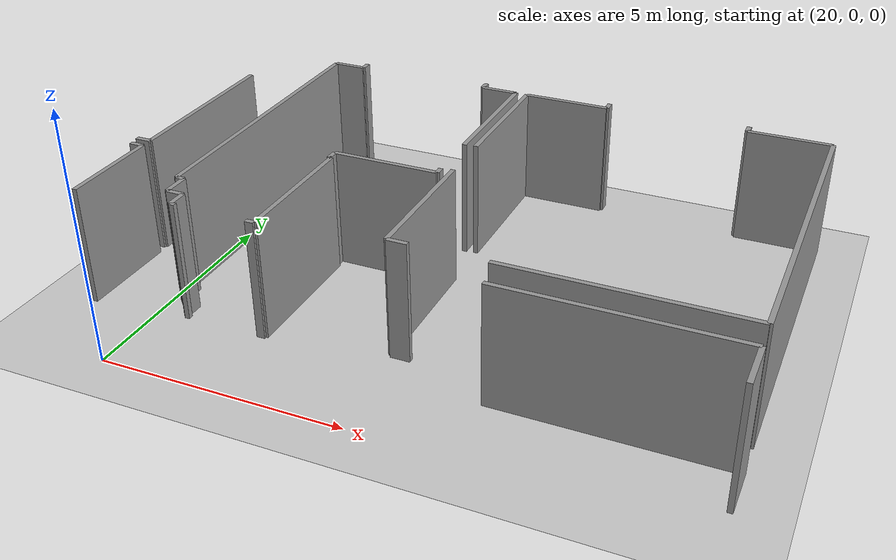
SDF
<sdf version="1.6">
 <world name="default">
  <model name="ground_plane">
   <static>1</static>
   <link name="link">
    <collision name="collision">
     <geometry><plane><normal>0 0 1</normal><size>100 100</size></plane></geometry>
     <surface><friction><ode><mu>100</mu><mu2>50</mu2></ode></friction></surface>
    </collision>
    <visual name="visual">
     <cast_shadows>0</cast_shadows>
     <geometry><plane><normal>0 0 1</normal><size>100 100</size></plane></geometry>
     <material>
      <script><uri>file://media/materials/scripts/gazebo.material</uri><name>Gazebo/Grey</name></script>
     </material>
    </visual>
   </link>
  </model>
  <model name="0510034841_A-40">
   <static>1</static>
   <link name="Wall_249">
    <collision name="Wall_249_Collision">
     <geometry><box><size>0.285493043567 0.1 2.5</size></box></geometry>
     <pose>0.142746521783 0 1.25 0 0 0</pose>
    </collision>
    <visual name="Wall_249_Visual">
     <pose>0.142746521783 0 1.25 0 0 0</pose>
     <geometry><box><size>0.285493043567 0.1 2.5</size></box></geometry>
     <material>
      <script><uri>file://media/materials/scripts/gazebo.material</uri><name>Gazebo/Grey</name></script>
      <ambient>1 1 1 1</ambient>
     </material>
    </visual>
    <pose>52.1133340104 -5.7047831827 0 0 0 0.0</pose>
   </link>
   <link name="Wall_250">
    <collision name="Wall_250_Collision">
     <geometry><box><size>2.08210622525 0.1 2.5</size></box></geometry>
     <pose>1.04105311262 0 1.25 0 0 0</pose>
    </collision>
    <visual name="Wall_250_Visual">
     <pose>1.04105311262 0 1.25 0 0 0</pose>
     <geometry><box><size>2.08210622525 0.1 2.5</size></box></geometry>
     <material>
      <script><uri>file://media/materials/scripts/gazebo.material</uri><name>Gazebo/Grey</name></script>
      <ambient>1 1 1 1</ambient>
     </material>
    </visual>
    <pose>52.3988270539 -5.7047831827 0 0 0 -1.57079632679</pose>
   </link>
   <link name="Wall_264">
    <collision name="Wall_264_Collision">
     <geometry><box><size>3.80687011272 0.1 2.5</size></box></geometry>
     <pose>1.90343505636 0 1.25 0 0 0</pose>
    </collision>
    <visual name="Wall_264_Visual">
     <pose>1.90343505636 0 1.25 0 0 0</pose>
     <geometry><box><size>3.80687011272 0.1 2.5</size></box></geometry>
     <material>
      <script><uri>file://media/materials/scripts/gazebo.material</uri><name>Gazebo/Grey</name></script>
      <ambient>1 1 1 1</ambient>
     </material>
    </visual>
    <pose>52.4046663959 -1.65659591754 0 0 0 -1.57079632679</pose>
   </link>
   <link name="Wall_265">
    <collision name="Wall_265_Collision">
     <geometry><box><size>0.318751904133 0.1 2.5</size></box></geometry>
     <pose>0.159375952067 0 1.25 0 0 0</pose>
    </collision>
    <visual name="Wall_265_Visual">
     <pose>0.159375952067 0 1.25 0 0 0</pose>
     <geometry><box><size>0.318751904133 0.1 2.5</size></box></geometry>
     <material>
      <script><uri>file://media/materials/scripts/gazebo.material</uri><name>Gazebo/Grey</name></script>
      <ambient>1 1 1 1</ambient>
     </material>
    </visual>
    <pose>52.4046663959 -5.46346603026 0 0 0 3.14159265359</pose>
   </link>
   <link name="Wall_267">
    <collision name="Wall_267_Collision">
     <geometry><box><size>6.36285162994 0.1 2.5</size></box></geometry>
     <pose>3.18142581497 0 1.25 0 0 0</pose>
    </collision>
    <visual name="Wall_267_Visual">
     <pose>3.18142581497 0 1.25 0 0 0</pose>
     <geometry><box><size>6.36285162994 0.1 2.5</size></box></geometry>
     <material>
      <script><uri>file://media/materials/scripts/gazebo.material</uri><name>Gazebo/Grey</name></script>
      <ambient>1 1 1 1</ambient>
     </material>
    </visual>
    <pose>53.8590433635 -6.6075962222 0 0 0 1.57079632679</pose>
   </link>
   <link name="Wall_268">
    <collision name="Wall_268_Collision">
     <geometry><box><size>0.70122880065 0.1 2.5</size></box></geometry>
     <pose>0.350614400325 0 1.25 0 0 0</pose>
    </collision>
    <visual name="Wall_268_Visual">
     <pose>0.350614400325 0 1.25 0 0 0</pose>
     <geometry><box><size>0.70122880065 0.1 2.5</size></box></geometry>
     <material>
      <script><uri>file://media/materials/scripts/gazebo.material</uri><name>Gazebo/Grey</name></script>
      <ambient>1 1 1 1</ambient>
     </material>
    </visual>
    <pose>53.8590433635 -0.244744592262 0 0 0 0.0</pose>
   </link>
   <link name="Wall_269">
    <collision name="Wall_269_Collision">
     <geometry><box><size>0.223799126638 0.1 2.5</size></box></geometry>
     <pose>0.111899563319 0 1.25 0 0 0</pose>
    </collision>
    <visual name="Wall_269_Visual">
     <pose>0.111899563319 0 1.25 0 0 0</pose>
     <geometry><box><size>0.223799126638 0.1 2.5</size></box></geometry>
     <material>
      <script><uri>file://media/materials/scripts/gazebo.material</uri><name>Gazebo/Grey</name></script>
      <ambient>1 1 1 1</ambient>
     </material>
    </visual>
    <pose>54.5602721641 -0.244744592262 0 0 0 1.57079632679</pose>
   </link>
   <link name="Wall_270">
    <collision name="Wall_270_Collision">
     <geometry><box><size>0.227734335331 0.1 2.5</size></box></geometry>
     <pose>0.113867167665 0 1.25 0 0 0</pose>
    </collision>
    <visual name="Wall_270_Visual">
     <pose>0.113867167665 0 1.25 0 0 0</pose>
     <geometry><box><size>0.227734335331 0.1 2.5</size></box></geometry>
     <material>
      <script><uri>file://media/materials/scripts/gazebo.material</uri><name>Gazebo/Grey</name></script>
      <ambient>1 1 1 1</ambient>
     </material>
    </visual>
    <pose>57.5729917741 -0.0209454656241 0 0 0 -1.57079632679</pose>
   </link>
   <link name="Wall_271">
    <collision name="Wall_271_Collision">
     <geometry><box><size>0.790850005078 0.1 2.5</size></box></geometry>
     <pose>0.395425002539 0 1.25 0 0 0</pose>
    </collision>
    <visual name="Wall_271_Visual">
     <pose>0.395425002539 0 1.25 0 0 0</pose>
     <geometry><box><size>0.790850005078 0.1 2.5</size></box></geometry>
     <material>
      <script><uri>file://media/materials/scripts/gazebo.material</uri><name>Gazebo/Grey</name></script>
      <ambient>1 1 1 1</ambient>
     </material>
    </visual>
    <pose>57.5729917741 -0.248679800955 0 0 0 0.0</pose>
   </link>
   <link name="Wall_272">
    <collision name="Wall_272_Collision">
     <geometry><box><size>2.89187062049 0.1 2.5</size></box></geometry>
     <pose>1.44593531025 0 1.25 0 0 0</pose>
    </collision>
    <visual name="Wall_272_Visual">
     <pose>1.44593531025 0 1.25 0 0 0</pose>
     <geometry><box><size>2.89187062049 0.1 2.5</size></box></geometry>
     <material>
      <script><uri>file://media/materials/scripts/gazebo.material</uri><name>Gazebo/Grey</name></script>
      <ambient>1 1 1 1</ambient>
     </material>
    </visual>
    <pose>58.3638417792 -0.248679800955 0 0 0 -1.57079632679</pose>
   </link>
   <link name="Wall_273">
    <collision name="Wall_273_Collision">
     <geometry><box><size>0.176576622322 0.1 2.5</size></box></geometry>
     <pose>0.0882883111608 0 1.25 0 0 0</pose>
    </collision>
    <visual name="Wall_273_Visual">
     <pose>0.0882883111608 0 1.25 0 0 0</pose>
     <geometry><box><size>0.176576622322 0.1 2.5</size></box></geometry>
     <material>
      <script><uri>file://media/materials/scripts/gazebo.material</uri><name>Gazebo/Grey</name></script>
      <ambient>1 1 1 1</ambient>
     </material>
    </visual>
    <pose>58.3638417792 -4.2935665685 0 0 0 -1.57079632679</pose>
   </link>
   <link name="Wall_274">
    <collision name="Wall_274_Collision">
     <geometry><box><size>2.23189804001 0.1 2.5</size></box></geometry>
     <pose>1.11594902001 0 1.25 0 0 0</pose>
    </collision>
    <visual name="Wall_274_Visual">
     <pose>1.11594902001 0 1.25 0 0 0</pose>
     <geometry><box><size>2.23189804001 0.1 2.5</size></box></geometry>
     <material>
      <script><uri>file://media/materials/scripts/gazebo.material</uri><name>Gazebo/Grey</name></script>
      <ambient>1 1 1 1</ambient>
     </material>
    </visual>
    <pose>58.3638417792 -4.47014319082 0 0 0 3.14159265359</pose>
   </link>
   <link name="Wall_275">
    <collision name="Wall_275_Collision">
     <geometry><box><size>0.242205747944 0.1 2.5</size></box></geometry>
     <pose>0.121102873972 0 1.25 0 0 0</pose>
    </collision>
    <visual name="Wall_275_Visual">
     <pose>0.121102873972 0 1.25 0 0 0</pose>
     <geometry><box><size>0.242205747944 0.1 2.5</size></box></geometry>
     <material>
      <script><uri>file://media/materials/scripts/gazebo.material</uri><name>Gazebo/Grey</name></script>
      <ambient>1 1 1 1</ambient>
     </material>
    </visual>
    <pose>56.1319437392 -4.47014319082 0 0 0 -1.57079632679</pose>
   </link>
   <link name="Wall_276">
    <collision name="Wall_276_Collision">
     <geometry><box><size>0.0415101046004 0.1 2.5</size></box></geometry>
     <pose>0.0207550523002 0 1.25 0 0 0</pose>
    </collision>
    <visual name="Wall_276_Visual">
     <pose>0.0207550523002 0 1.25 0 0 0</pose>
     <geometry><box><size>0.0415101046004 0.1 2.5</size></box></geometry>
     <material>
      <script><uri>file://media/materials/scripts/gazebo.material</uri><name>Gazebo/Grey</name></script>
      <ambient>1 1 1 1</ambient>
     </material>
    </visual>
    <pose>56.1319437392 -4.71234893876 0 0 0 0.0</pose>
   </link>
   <link name="Wall_277">
    <collision name="Wall_277_Collision">
     <geometry><box><size>2.82205240175 0.1 2.5</size></box></geometry>
     <pose>1.41102620087 0 1.25 0 0 0</pose>
    </collision>
    <visual name="Wall_277_Visual">
     <pose>1.41102620087 0 1.25 0 0 0</pose>
     <geometry><box><size>2.82205240175 0.1 2.5</size></box></geometry>
     <material>
      <script><uri>file://media/materials/scripts/gazebo.material</uri><name>Gazebo/Grey</name></script>
      <ambient>1 1 1 1</ambient>
     </material>
    </visual>
    <pose>56.1734538438 -4.71234893876 0 0 0 -1.57079632679</pose>
   </link>
   <link name="Wall_278">
    <collision name="Wall_278_Collision">
     <geometry><box><size>0.172768355844 0.1 2.5</size></box></geometry>
     <pose>0.0863841779222 0 1.25 0 0 0</pose>
    </collision>
    <visual name="Wall_278_Visual">
     <pose>0.0863841779222 0 1.25 0 0 0</pose>
     <geometry><box><size>0.172768355844 0.1 2.5</size></box></geometry>
     <material>
      <script><uri>file://media/materials/scripts/gazebo.material</uri><name>Gazebo/Grey</name></script>
      <ambient>1 1 1 1</ambient>
     </material>
    </visual>
    <pose>56.1734538438 -7.53440134051 0 0 0 3.14159265359</pose>
   </link>
   <link name="Wall_279">
    <collision name="Wall_279_Collision">
     <geometry><box><size>0.101046003859 0.1 2.5</size></box></geometry>
     <pose>0.0505230019295 0 1.25 0 0 0</pose>
    </collision>
    <visual name="Wall_279_Visual">
     <pose>0.0505230019295 0 1.25 0 0 0</pose>
     <geometry><box><size>0.101046003859 0.1 2.5</size></box></geometry>
     <material>
      <script><uri>file://media/materials/scripts/gazebo.material</uri><name>Gazebo/Grey</name></script>
      <ambient>1 1 1 1</ambient>
     </material>
    </visual>
    <pose>54.4815679903 -7.53440134051 0 0 0 3.14159265359</pose>
   </link>
   <link name="Wall_280">
    <collision name="Wall_280_Collision">
     <geometry><box><size>0.39694830913 0.1 2.5</size></box></geometry>
     <pose>0.198474154565 0 1.25 0 0 0</pose>
    </collision>
    <visual name="Wall_280_Visual">
     <pose>0.198474154565 0 1.25 0 0 0</pose>
     <geometry><box><size>0.39694830913 0.1 2.5</size></box></geometry>
     <material>
      <script><uri>file://media/materials/scripts/gazebo.material</uri><name>Gazebo/Grey</name></script>
      <ambient>1 1 1 1</ambient>
     </material>
    </visual>
    <pose>54.3805219864 -7.53440134051 0 0 0 1.57079632679</pose>
   </link>
   <link name="Wall_281">
    <collision name="Wall_281_Collision">
     <geometry><box><size>0.353661013507 0.1 2.5</size></box></geometry>
     <pose>0.176830506753 0 1.25 0 0 0</pose>
    </collision>
    <visual name="Wall_281_Visual">
     <pose>0.176830506753 0 1.25 0 0 0</pose>
     <geometry><box><size>0.353661013507 0.1 2.5</size></box></geometry>
     <material>
      <script><uri>file://media/materials/scripts/gazebo.material</uri><name>Gazebo/Grey</name></script>
      <ambient>1 1 1 1</ambient>
     </material>
    </visual>
    <pose>54.3805219864 -7.13745303138 0 0 0 3.14159265359</pose>
   </link>
   <link name="Wall_282">
    <collision name="Wall_282_Collision">
     <geometry><box><size>0.529729866965 0.1 2.5</size></box></geometry>
     <pose>0.264864933482 0 1.25 0 0 0</pose>
    </collision>
    <visual name="Wall_282_Visual">
     <pose>0.264864933482 0 1.25 0 0 0</pose>
     <geometry><box><size>0.529729866965 0.1 2.5</size></box></geometry>
     <material>
      <script><uri>file://media/materials/scripts/gazebo.material</uri><name>Gazebo/Grey</name></script>
      <ambient>1 1 1 1</ambient>
     </material>
    </visual>
    <pose>54.0268609729 -7.13745303138 0 0 0 1.57079632679</pose>
   </link>
   <link name="Wall_283">
    <collision name="Wall_283_Collision">
     <geometry><box><size>0.167817657436 0.1 2.5</size></box></geometry>
     <pose>0.0839088287178 0 1.25 0 0 0</pose>
    </collision>
    <visual name="Wall_283_Visual">
     <pose>0.0839088287178 0 1.25 0 0 0</pose>
     <geometry><box><size>0.167817657436 0.1 2.5</size></box></geometry>
     <material>
      <script><uri>file://media/materials/scripts/gazebo.material</uri><name>Gazebo/Grey</name></script>
      <ambient>1 1 1 1</ambient>
     </material>
    </visual>
    <pose>54.0268609729 -6.60772316442 0 0 0 3.14083622408</pose>
   </link>
   <link name="Wall_284">
    <collision name="Wall_284_Collision">
     <geometry><box><size>1.84040824617 0.1 2.5</size></box></geometry>
     <pose>0.920204123083 0 1.25 0 0 0</pose>
    </collision>
    <visual name="Wall_284_Visual">
     <pose>0.920204123083 0 1.25 0 0 0</pose>
     <geometry><box><size>1.84040824617 0.1 2.5</size></box></geometry>
     <material>
      <script><uri>file://media/materials/scripts/gazebo.material</uri><name>Gazebo/Grey</name></script>
      <ambient>1 1 1 1</ambient>
     </material>
    </visual>
    <pose>58.6240733218 -0.248806743171 0 0 0 0.0</pose>
   </link>
   <link name="Wall_285">
    <collision name="Wall_285_Collision">
     <geometry><box><size>0.230907890728 0.1 2.5</size></box></geometry>
     <pose>0.115453945364 0 1.25 0 0 0</pose>
    </collision>
    <visual name="Wall_285_Visual">
     <pose>0.115453945364 0 1.25 0 0 0</pose>
     <geometry><box><size>0.230907890728 0.1 2.5</size></box></geometry>
     <material>
      <script><uri>file://media/materials/scripts/gazebo.material</uri><name>Gazebo/Grey</name></script>
      <ambient>1 1 1 1</ambient>
     </material>
    </visual>
    <pose>60.464481568 -0.248806743171 0 0 0 1.57079632679</pose>
   </link>
   <link name="Wall_286">
    <collision name="Wall_286_Collision">
     <geometry><box><size>0.224941606581 0.1 2.5</size></box></geometry>
     <pose>0.11247080329 0 1.25 0 0 0</pose>
    </collision>
    <visual name="Wall_286_Visual">
     <pose>0.11247080329 0 1.25 0 0 0</pose>
     <geometry><box><size>0.224941606581 0.1 2.5</size></box></geometry>
     <material>
      <script><uri>file://media/materials/scripts/gazebo.material</uri><name>Gazebo/Grey</name></script>
      <ambient>1 1 1 1</ambient>
     </material>
    </visual>
    <pose>63.4891337463 -0.0178988524424 0 0 0 -1.57079632679</pose>
   </link>
   <link name="Wall_287">
    <collision name="Wall_287_Collision">
     <geometry><box><size>1.73390372702 0.1 2.5</size></box></geometry>
     <pose>0.866951863512 0 1.25 0 0 0</pose>
    </collision>
    <visual name="Wall_287_Visual">
     <pose>0.866951863512 0 1.25 0 0 0</pose>
     <geometry><box><size>1.73390372702 0.1 2.5</size></box></geometry>
     <material>
      <script><uri>file://media/materials/scripts/gazebo.material</uri><name>Gazebo/Grey</name></script>
      <ambient>1 1 1 1</ambient>
     </material>
    </visual>
    <pose>63.4891337463 -0.242840459023 0 0 0 0.0</pose>
   </link>
   <link name="Wall_288">
    <collision name="Wall_288_Collision">
     <geometry><box><size>6.89296232355 0.1 2.5</size></box></geometry>
     <pose>3.44648116178 0 1.25 0 0 0</pose>
    </collision>
    <visual name="Wall_288_Visual">
     <pose>3.44648116178 0 1.25 0 0 0</pose>
     <geometry><box><size>6.89296232355 0.1 2.5</size></box></geometry>
     <material>
      <script><uri>file://media/materials/scripts/gazebo.material</uri><name>Gazebo/Grey</name></script>
      <ambient>1 1 1 1</ambient>
     </material>
    </visual>
    <pose>65.2230374733 -0.242840459023 0 0 0 -1.57079632679</pose>
   </link>
   <link name="Wall_289">
    <collision name="Wall_289_Collision">
     <geometry><box><size>4.68404082462 0.1 2.5</size></box></geometry>
     <pose>2.34202041231 0 1.25 0 0 0</pose>
    </collision>
    <visual name="Wall_289_Visual">
     <pose>2.34202041231 0 1.25 0 0 0</pose>
     <geometry><box><size>4.68404082462 0.1 2.5</size></box></geometry>
     <material>
      <script><uri>file://media/materials/scripts/gazebo.material</uri><name>Gazebo/Grey</name></script>
      <ambient>1 1 1 1</ambient>
     </material>
    </visual>
    <pose>65.2230374733 -7.13580278257 0 0 0 3.14159265359</pose>
   </link>
   <link name="Wall_290">
    <collision name="Wall_290_Collision">
     <geometry><box><size>0.411673606174 0.1 2.5</size></box></geometry>
     <pose>0.205836803087 0 1.25 0 0 0</pose>
    </collision>
    <visual name="Wall_290_Visual">
     <pose>0.205836803087 0 1.25 0 0 0</pose>
     <geometry><box><size>0.411673606174 0.1 2.5</size></box></geometry>
     <material>
      <script><uri>file://media/materials/scripts/gazebo.material</uri><name>Gazebo/Grey</name></script>
      <ambient>1 1 1 1</ambient>
     </material>
    </visual>
    <pose>59.0170864223 -7.13580278257 0 0 0 3.14159265359</pose>
   </link>
   <link name="Wall_291">
    <collision name="Wall_291_Collision">
     <geometry><box><size>2.88704681629 0.1 2.5</size></box></geometry>
     <pose>1.44352340814 0 1.25 0 0 0</pose>
    </collision>
    <visual name="Wall_291_Visual">
     <pose>1.44352340814 0 1.25 0 0 0</pose>
     <geometry><box><size>2.88704681629 0.1 2.5</size></box></geometry>
     <material>
      <script><uri>file://media/materials/scripts/gazebo.material</uri><name>Gazebo/Grey</name></script>
      <ambient>1 1 1 1</ambient>
     </material>
    </visual>
    <pose>58.6054128161 -7.13580278257 0 0 0 1.57079632679</pose>
   </link>
   <link name="Wall_292">
    <collision name="Wall_292_Collision">
     <geometry><box><size>2.86616209708 0.1 2.5</size></box></geometry>
     <pose>1.43308104854 0 1.25 0 0 0</pose>
    </collision>
    <visual name="Wall_292_Visual">
     <pose>1.43308104854 0 1.25 0 0 0</pose>
     <geometry><box><size>2.86616209708 0.1 2.5</size></box></geometry>
     <material>
      <script><uri>file://media/materials/scripts/gazebo.material</uri><name>Gazebo/Grey</name></script>
      <ambient>1 1 1 1</ambient>
     </material>
    </visual>
    <pose>58.6054128161 -3.11490809384 0 0 0 1.5642856561</pose>
   </link>
   <link name="Wall_296">
    <collision name="Wall_296_Collision">
     <geometry><box><size>4.54313496496 0.1 2.5</size></box></geometry>
     <pose>2.27156748248 0 1.25 0 0 0</pose>
    </collision>
    <visual name="Wall_296_Visual">
     <pose>2.27156748248 0 1.25 0 0 0</pose>
     <geometry><box><size>4.54313496496 0.1 2.5</size></box></geometry>
     <material>
      <script><uri>file://media/materials/scripts/gazebo.material</uri><name>Gazebo/Grey</name></script>
      <ambient>1 1 1 1</ambient>
     </material>
    </visual>
    <pose>60.6887884635 -7.78473139027 0 0 0 0.0</pose>
   </link>
   <link name="Wall_297">
    <collision name="Wall_297_Collision">
     <geometry><box><size>0.990149284046 0.1 2.5</size></box></geometry>
     <pose>0.495074642023 0 1.25 0 0 0</pose>
    </collision>
    <visual name="Wall_297_Visual">
     <pose>0.495074642023 0 1.25 0 0 0</pose>
     <geometry><box><size>0.990149284046 0.1 2.5</size></box></geometry>
     <material>
      <script><uri>file://media/materials/scripts/gazebo.material</uri><name>Gazebo/Grey</name></script>
      <ambient>1 1 1 1</ambient>
     </material>
    </visual>
    <pose>65.2319234285 -7.78473139027 0 0 0 -1.57079632679</pose>
   </link>
   <pose>-33.8 9.33765613893 0 0 0 0</pose>
  </model>
 </world>
</sdf>
